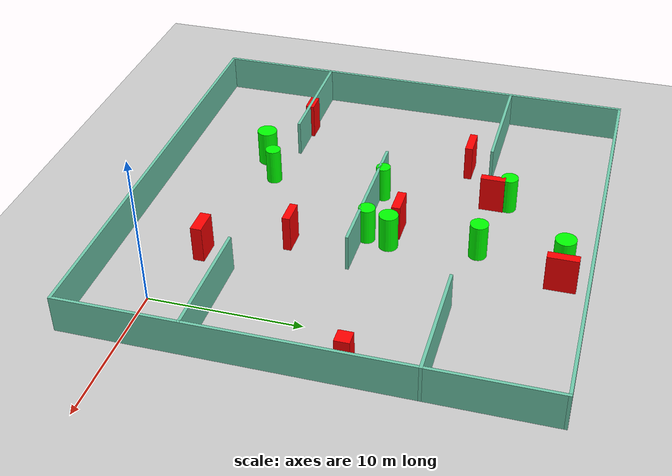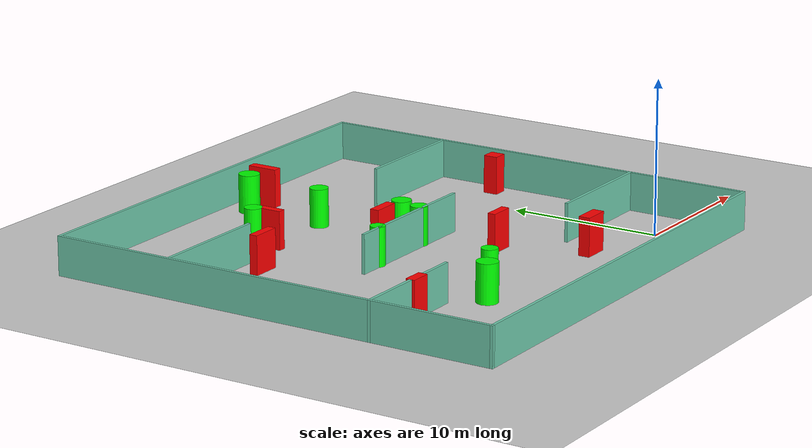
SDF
<sdf version="1.7">
 <world name="default">
  <light name="sun" type="directional">
   <pose>0 0 10 0 -0 0</pose>
   <diffuse>0.8 0.8 0.8 1</diffuse>
   <specular>0.2 0.2 0.2 1</specular>
   <attenuation>
    <range>1000</range>
    <constant>0.9</constant>
    <linear>0.01</linear>
    <quadratic>0.001</quadratic>
   </attenuation>
   <direction>-0.5 0.1 -0.9</direction>
   <spot><inner_angle>0</inner_angle><outer_angle>0</outer_angle><falloff>0</falloff></spot>
  </light>
  <model name="ground_plane">
   <static>1</static>
   <link name="link">
    <collision name="collision">
     <geometry><plane><normal>0 0 1</normal><size>100 100</size></plane></geometry>
     <surface>
      <contact><collide_bitmask>65535</collide_bitmask></contact>
      <friction><ode><mu>100</mu><mu2>50</mu2></ode></friction>
     </surface>
    </collision>
    <visual name="visual">
     <cast_shadows>0</cast_shadows>
     <geometry><plane><normal>0 0 1</normal><size>100 100</size></plane></geometry>
     <material>
      <script><uri>file://media/materials/scripts/gazebo.material</uri><name>Gazebo/Grey</name></script>
     </material>
    </visual>
   </link>
  </model>
  <gravity>0 0 -9.8</gravity>
  <magnetic_field>6e-06 2.3e-05 -4.2e-05</magnetic_field>
  <atmosphere type="adiabatic"/>
  <physics type="ode">
   <max_step_size>0.001</max_step_size>
   <real_time_factor>1</real_time_factor>
   <real_time_update_rate>1000</real_time_update_rate>
  </physics>
  <scene><ambient>0.4 0.4 0.4 1</ambient><background>0.7 0.7 0.7 1</background><shadows>1</shadows></scene>
  <spherical_coordinates>
   <surface_model>EARTH_WGS84</surface_model>
   <latitude_deg>0</latitude_deg>
   <longitude_deg>0</longitude_deg>
   <elevation>0</elevation>
   <heading_deg>0</heading_deg>
  </spherical_coordinates>
  <model name="my_base_walls">
   <link name="Wall_10">
    <collision name="Wall_10_Collision">
     <geometry><box><size>8.2 0.2 2.5</size></box></geometry>
     <pose>0 0 1.25 0 -0 0</pose>
    </collision>
    <visual name="Wall_10_Visual">
     <pose>0 0 1.25 0 -0 0</pose>
     <geometry><box><size>8.2 0.2 2.5</size></box></geometry>
     <material>
      <script><uri>file://media/materials/scripts/gazebo.material</uri><name>Gazebo/Grey</name></script>
      <ambient>0.435294 0.796078 0.67451 1</ambient>
     </material>
     <meta><layer>0</layer></meta>
    </visual>
    <pose>-11 -7 0 0 -0 0</pose>
   </link>
   <link name="Wall_12">
    <collision name="Wall_12_Collision">
     <geometry><box><size>8.2 0.2 2.5</size></box></geometry>
     <pose>0 0 1.25 0 -0 0</pose>
    </collision>
    <visual name="Wall_12_Visual">
     <pose>0 0 1.25 0 -0 0</pose>
     <geometry><box><size>8.2 0.2 2.5</size></box></geometry>
     <material>
      <script><uri>file://media/materials/scripts/gazebo.material</uri><name>Gazebo/Grey</name></script>
      <ambient>0.435294 0.796078 0.67451 1</ambient>
     </material>
     <meta><layer>0</layer></meta>
    </visual>
    <pose>-11 7 0 0 -0 0</pose>
   </link>
   <link name="Wall_14">
    <collision name="Wall_14_Collision">
     <geometry><box><size>8.2 0.2 2.5</size></box></geometry>
     <pose>0 0 1.25 0 -0 0</pose>
    </collision>
    <visual name="Wall_14_Visual">
     <pose>0 0 1.25 0 -0 0</pose>
     <geometry><box><size>8.2 0.2 2.5</size></box></geometry>
     <material>
      <script><uri>file://media/materials/scripts/gazebo.material</uri><name>Gazebo/Grey</name></script>
      <ambient>0.435294 0.796078 0.67451 1</ambient>
     </material>
     <meta><layer>0</layer></meta>
    </visual>
    <pose>11 7 0 0 -0 3.14159</pose>
   </link>
   <link name="Wall_16">
    <collision name="Wall_16_Collision">
     <geometry><box><size>10.2 0.2 2.5</size></box></geometry>
     <pose>0 0 1.25 0 -0 0</pose>
    </collision>
    <visual name="Wall_16_Visual">
     <pose>0 0 1.25 0 -0 0</pose>
     <geometry><box><size>10.2 0.2 2.5</size></box></geometry>
     <material>
      <script><uri>file://media/materials/scripts/gazebo.material</uri><name>Gazebo/Grey</name></script>
      <ambient>0.435294 0.796078 0.67451 1</ambient>
     </material>
     <meta><layer>0</layer></meta>
    </visual>
    <pose>0 0 0 0 -0 3.14159</pose>
   </link>
   <link name="Wall_2">
    <collision name="Wall_2_Collision">
     <geometry><box><size>30.2 0.2 2.5</size></box></geometry>
     <pose>0 0 1.25 0 -0 0</pose>
    </collision>
    <visual name="Wall_2_Visual">
     <pose>0 0 1.25 0 -0 0</pose>
     <geometry><box><size>30.2 0.2 2.5</size></box></geometry>
     <material>
      <script><uri>file://media/materials/scripts/gazebo.material</uri><name>Gazebo/Grey</name></script>
      <ambient>0.435294 0.796078 0.67451 1</ambient>
     </material>
     <meta><layer>0</layer></meta>
    </visual>
    <pose>0 -15 0 0 -0 3.14159</pose>
   </link>
   <link name="Wall_3">
    <collision name="Wall_3_Collision">
     <geometry><box><size>30.2 0.2 2.5</size></box></geometry>
     <pose>0 0 1.25 0 -0 0</pose>
    </collision>
    <visual name="Wall_3_Visual">
     <pose>0 0 1.25 0 -0 0</pose>
     <geometry><box><size>30.2 0.2 2.5</size></box></geometry>
     <material>
      <script><uri>file://media/materials/scripts/gazebo.material</uri><name>Gazebo/Grey</name></script>
      <ambient>0.435294 0.796078 0.67451 1</ambient>
     </material>
     <meta><layer>0</layer></meta>
    </visual>
    <pose>-15 0 0 0 -0 1.5708</pose>
   </link>
   <link name="Wall_4">
    <collision name="Wall_4_Collision">
     <geometry><box><size>30.2 0.2 2.5</size></box></geometry>
     <pose>0 0 1.25 0 -0 0</pose>
    </collision>
    <visual name="Wall_4_Visual">
     <pose>0 0 1.25 0 -0 0</pose>
     <geometry><box><size>30.2 0.2 2.5</size></box></geometry>
     <material>
      <script><uri>file://media/materials/scripts/gazebo.material</uri><name>Gazebo/Grey</name></script>
      <ambient>0.435294 0.796078 0.67451 1</ambient>
     </material>
     <meta><layer>0</layer></meta>
    </visual>
    <pose>0 15 0 0 -0 0</pose>
   </link>
   <link name="Wall_6">
    <collision name="Wall_6_Collision">
     <geometry><box><size>30.2 0.2 2.5</size></box></geometry>
     <pose>0 0 1.25 0 -0 0</pose>
    </collision>
    <visual name="Wall_6_Visual">
     <pose>0 0 1.25 0 -0 0</pose>
     <geometry><box><size>30.2 0.2 2.5</size></box></geometry>
     <material>
      <script><uri>file://media/materials/scripts/gazebo.material</uri><name>Gazebo/Grey</name></script>
      <ambient>0.435294 0.796078 0.67451 1</ambient>
     </material>
     <meta><layer>0</layer></meta>
    </visual>
    <pose>15 0 0 0 -0 1.5708</pose>
   </link>
   <link name="Wall_8">
    <collision name="Wall_8_Collision">
     <geometry><box><size>8.2 0.2 2.5</size></box></geometry>
     <pose>0 0 1.25 0 -0 0</pose>
    </collision>
    <visual name="Wall_8_Visual">
     <pose>0 0 1.25 0 -0 0</pose>
     <geometry><box><size>8.2 0.2 2.5</size></box></geometry>
     <material>
      <script><uri>file://media/materials/scripts/gazebo.material</uri><name>Gazebo/Grey</name></script>
      <ambient>0.435294 0.796078 0.67451 1</ambient>
     </material>
     <meta><layer>0</layer></meta>
    </visual>
    <pose>11 -7 0 0 -0 3.14159</pose>
   </link>
   <static>1</static>
   <pose>-11 11 0 0 -0 0</pose>
  </model>
  <model name="cylinder1">
   <static>1</static>
   <link name="link">
    <inertial>
     <mass>1</mass>
     <inertia><ixx>0.5</ixx><ixy>0</ixy><ixz>0</ixz><iyy>0.5</iyy><iyz>0</iyz><izz>1</izz></inertia>
    </inertial>
    <collision name="collision">
     <geometry><cylinder><radius>0.6856029430779575</radius><length>2.5</length></cylinder></geometry>
    </collision>
    <visual name="visual">
     <geometry><cylinder><radius>0.6856029430779575</radius><length>2.5</length></cylinder></geometry>
     <material>
      <ambient>0 1 0 1</ambient>
      <diffuse>0 1 0 1</diffuse>
      <specular>0.1 0.1 0.1 1</specular>
      <emissive>0 0 0 0</emissive>
     </material>
    </visual>
   </link>
   <pose>-16.481783653139367 2.1095712657854744 1.25 0 0 0</pose>
  </model>
  <model name="cylinder2">
   <static>1</static>
   <link name="link">
    <inertial>
     <mass>1</mass>
     <inertia><ixx>0.5</ixx><ixy>0</ixy><ixz>0</ixz><iyy>0.5</iyy><iyz>0</iyz><izz>1</izz></inertia>
    </inertial>
    <collision name="collision">
     <geometry><cylinder><radius>0.5541081768311928</radius><length>2.5</length></cylinder></geometry>
    </collision>
    <visual name="visual">
     <geometry><cylinder><radius>0.5541081768311928</radius><length>2.5</length></cylinder></geometry>
     <material>
      <ambient>0 1 0 1</ambient>
      <diffuse>0 1 0 1</diffuse>
      <specular>0.1 0.1 0.1 1</specular>
      <emissive>0 0 0 0</emissive>
     </material>
    </visual>
   </link>
   <pose>-9.308797314926014 11.38275360388665 1.25 0 0 0</pose>
  </model>
  <model name="cylinder3">
   <static>1</static>
   <link name="link">
    <inertial>
     <mass>1</mass>
     <inertia><ixx>0.5</ixx><ixy>0</ixy><ixz>0</ixz><iyy>0.5</iyy><iyz>0</iyz><izz>1</izz></inertia>
    </inertial>
    <collision name="collision">
     <geometry><cylinder><radius>0.6336333463547302</radius><length>2.5</length></cylinder></geometry>
    </collision>
    <visual name="visual">
     <geometry><cylinder><radius>0.6336333463547302</radius><length>2.5</length></cylinder></geometry>
     <material>
      <ambient>0 1 0 1</ambient>
      <diffuse>0 1 0 1</diffuse>
      <specular>0.1 0.1 0.1 1</specular>
      <emissive>0 0 0 0</emissive>
     </material>
    </visual>
   </link>
   <pose>-8.915063907206239 12.924709237545397 1.25 0 0 0</pose>
  </model>
  <model name="cylinder4">
   <static>1</static>
   <link name="link">
    <inertial>
     <mass>1</mass>
     <inertia><ixx>0.5</ixx><ixy>0</ixy><ixz>0</ixz><iyy>0.5</iyy><iyz>0</iyz><izz>1</izz></inertia>
    </inertial>
    <collision name="collision">
     <geometry><cylinder><radius>0.6843343526646563</radius><length>2.5</length></cylinder></geometry>
    </collision>
    <visual name="visual">
     <geometry><cylinder><radius>0.6843343526646563</radius><length>2.5</length></cylinder></geometry>
     <material>
      <ambient>0 1 0 1</ambient>
      <diffuse>0 1 0 1</diffuse>
      <specular>0.1 0.1 0.1 1</specular>
      <emissive>0 0 0 0</emissive>
     </material>
    </visual>
   </link>
   <pose>-9.295812400957558 24.153462288152785 1.25 0 0 0</pose>
  </model>
  <model name="cylinder5">
   <static>1</static>
   <link name="link">
    <inertial>
     <mass>1</mass>
     <inertia><ixx>0.5</ixx><ixy>0</ixy><ixz>0</ixz><iyy>0.5</iyy><iyz>0</iyz><izz>1</izz></inertia>
    </inertial>
    <collision name="collision">
     <geometry><cylinder><radius>0.5688231569951145</radius><length>2.5</length></cylinder></geometry>
    </collision>
    <visual name="visual">
     <geometry><cylinder><radius>0.5688231569951145</radius><length>2.5</length></cylinder></geometry>
     <material>
      <ambient>0 1 0 1</ambient>
      <diffuse>0 1 0 1</diffuse>
      <specular>0.1 0.1 0.1 1</specular>
      <emissive>0 0 0 0</emissive>
     </material>
    </visual>
   </link>
   <pose>-15.085712150942973 19.716447788885294 1.25 0 0 0</pose>
  </model>
  <model name="cylinder6">
   <static>1</static>
   <link name="link">
    <inertial>
     <mass>1</mass>
     <inertia><ixx>0.5</ixx><ixy>0</ixy><ixz>0</ixz><iyy>0.5</iyy><iyz>0</iyz><izz>1</izz></inertia>
    </inertial>
    <collision name="collision">
     <geometry><cylinder><radius>0.5980418269618055</radius><length>2.5</length></cylinder></geometry>
    </collision>
    <visual name="visual">
     <geometry><cylinder><radius>0.5980418269618055</radius><length>2.5</length></cylinder></geometry>
     <material>
      <ambient>0 1 0 1</ambient>
      <diffuse>0 1 0 1</diffuse>
      <specular>0.1 0.1 0.1 1</specular>
      <emissive>0 0 0 0</emissive>
     </material>
    </visual>
   </link>
   <pose>-9.472195441083974 18.686536753563093 1.25 0 0 0</pose>
  </model>
  <model name="cylinder7">
   <static>1</static>
   <link name="link">
    <inertial>
     <mass>1</mass>
     <inertia><ixx>0.5</ixx><ixy>0</ixy><ixz>0</ixz><iyy>0.5</iyy><iyz>0</iyz><izz>1</izz></inertia>
    </inertial>
    <collision name="collision">
     <geometry><cylinder><radius>0.5252026149179595</radius><length>2.5</length></cylinder></geometry>
    </collision>
    <visual name="visual">
     <geometry><cylinder><radius>0.5252026149179595</radius><length>2.5</length></cylinder></geometry>
     <material>
      <ambient>0 1 0 1</ambient>
      <diffuse>0 1 0 1</diffuse>
      <specular>0.1 0.1 0.1 1</specular>
      <emissive>0 0 0 0</emissive>
     </material>
    </visual>
   </link>
   <pose>-14.265610739649167 3.3066964334828883 1.25 0 0 0</pose>
  </model>
  <model name="cylinder8">
   <static>1</static>
   <link name="link">
    <inertial>
     <mass>1</mass>
     <inertia><ixx>0.5</ixx><ixy>0</ixy><ixz>0</ixz><iyy>0.5</iyy><iyz>0</iyz><izz>1</izz></inertia>
    </inertial>
    <collision name="collision">
     <geometry><cylinder><radius>0.4858164296600476</radius><length>2.5</length></cylinder></geometry>
    </collision>
    <visual name="visual">
     <geometry><cylinder><radius>0.4858164296600476</radius><length>2.5</length></cylinder></geometry>
     <material>
      <ambient>0 1 0 1</ambient>
      <diffuse>0 1 0 1</diffuse>
      <specular>0.1 0.1 0.1 1</specular>
      <emissive>0 0 0 0</emissive>
     </material>
    </visual>
   </link>
   <pose>-14.14233197936442 11.240286440402816 1.25 0 0 0</pose>
  </model>
  <model name="box1">
   <static>1</static>
   <link name="link">
    <inertial>
     <mass>1</mass>
     <inertia><ixx>0.083</ixx><ixy>0</ixy><ixz>0</ixz><iyy>0.083</iyy><iyz>0</iyz><izz>0.083</izz></inertia>
    </inertial>
    <collision name="collision">
     <geometry><box><size>1.3541398988276847 0.6042786590901906 2.5</size></box></geometry>
    </collision>
    <visual name="visual">
     <geometry><box><size>1.3541398988276847 0.6042786590901906 2.5</size></box></geometry>
     <material>
      <ambient>1 0 0 1</ambient>
      <diffuse>1 0 0 1</diffuse>
      <specular>0.1 0.1 0.1 1</specular>
      <emissive>0 0 0 0</emissive>
     </material>
    </visual>
    <sensor name="my_contact" type="contact">
     <contact><collision>box_collision</collision><topic>__default_topic__</topic></contact>
    </sensor>
   </link>
   <pose>-21.097053297138494 4.0264581858839374 1.25 0 0 0</pose>
  </model>
  <model name="box2">
   <static>1</static>
   <link name="link">
    <inertial>
     <mass>1</mass>
     <inertia><ixx>0.083</ixx><ixy>0</ixy><ixz>0</ixz><iyy>0.083</iyy><iyz>0</iyz><izz>0.083</izz></inertia>
    </inertial>
    <collision name="collision">
     <geometry><box><size>0.5954036918294212 2.0110030640007848 2.5</size></box></geometry>
    </collision>
    <visual name="visual">
     <geometry><box><size>0.5954036918294212 2.0110030640007848 2.5</size></box></geometry>
     <material>
      <ambient>1 0 0 1</ambient>
      <diffuse>1 0 0 1</diffuse>
      <specular>0.1 0.1 0.1 1</specular>
      <emissive>0 0 0 0</emissive>
     </material>
    </visual>
    <sensor name="my_contact" type="contact">
     <contact><collision>box_collision</collision><topic>__default_topic__</topic></contact>
    </sensor>
   </link>
   <pose>-7.512022044104189 24.220605178786474 1.25 0 0 0</pose>
  </model>
  <model name="box3">
   <static>1</static>
   <link name="link">
    <inertial>
     <mass>1</mass>
     <inertia><ixx>0.083</ixx><ixy>0</ixy><ixz>0</ixz><iyy>0.083</iyy><iyz>0</iyz><izz>0.083</izz></inertia>
    </inertial>
    <collision name="collision">
     <geometry><box><size>1.9207330007389334 0.5251516543397114 2.5</size></box></geometry>
    </collision>
    <visual name="visual">
     <geometry><box><size>1.9207330007389334 0.5251516543397114 2.5</size></box></geometry>
     <material>
      <ambient>1 0 0 1</ambient>
      <diffuse>1 0 0 1</diffuse>
      <specular>0.1 0.1 0.1 1</specular>
      <emissive>0 0 0 0</emissive>
     </material>
    </visual>
    <sensor name="my_contact" type="contact">
     <contact><collision>box_collision</collision><topic>__default_topic__</topic></contact>
    </sensor>
   </link>
   <pose>-18.803644430575275 16.39409544576834 1.25 0 0 0</pose>
  </model>
  <model name="box4">
   <static>1</static>
   <link name="link">
    <inertial>
     <mass>1</mass>
     <inertia><ixx>0.083</ixx><ixy>0</ixy><ixz>0</ixz><iyy>0.083</iyy><iyz>0</iyz><izz>0.083</izz></inertia>
    </inertial>
    <collision name="collision">
     <geometry><box><size>1.7412959428180743 0.7322448801803367 2.5</size></box></geometry>
    </collision>
    <visual name="visual">
     <geometry><box><size>1.7412959428180743 0.7322448801803367 2.5</size></box></geometry>
     <material>
      <ambient>1 0 0 1</ambient>
      <diffuse>1 0 0 1</diffuse>
      <specular>0.1 0.1 0.1 1</specular>
      <emissive>0 0 0 0</emissive>
     </material>
    </visual>
    <sensor name="my_contact" type="contact">
     <contact><collision>box_collision</collision><topic>__default_topic__</topic></contact>
    </sensor>
   </link>
   <pose>-5.150340090216574 1.633170123364554 1.25 0 0 0</pose>
  </model>
  <model name="box5">
   <static>1</static>
   <link name="link">
    <inertial>
     <mass>1</mass>
     <inertia><ixx>0.083</ixx><ixy>0</ixy><ixz>0</ixz><iyy>0.083</iyy><iyz>0</iyz><izz>0.083</izz></inertia>
    </inertial>
    <collision name="collision">
     <geometry><box><size>1.6570149022789968 0.5170024815027455 2.5</size></box></geometry>
    </collision>
    <visual name="visual">
     <geometry><box><size>1.6570149022789968 0.5170024815027455 2.5</size></box></geometry>
     <material>
      <ambient>1 0 0 1</ambient>
      <diffuse>1 0 0 1</diffuse>
      <specular>0.1 0.1 0.1 1</specular>
      <emissive>0 0 0 0</emissive>
     </material>
    </visual>
    <sensor name="my_contact" type="contact">
     <contact><collision>box_collision</collision><topic>__default_topic__</topic></contact>
    </sensor>
   </link>
   <pose>-7.614808794393735 6.732844514007592 1.25 0 0 0</pose>
  </model>
  <model name="box6">
   <static>1</static>
   <link name="link">
    <inertial>
     <mass>1</mass>
     <inertia><ixx>0.083</ixx><ixy>0</ixy><ixz>0</ixz><iyy>0.083</iyy><iyz>0</iyz><izz>0.083</izz></inertia>
    </inertial>
    <collision name="collision">
     <geometry><box><size>0.9546240889440993 0.9426321709983004 2.5</size></box></geometry>
    </collision>
    <visual name="visual">
     <geometry><box><size>0.9546240889440993 0.9426321709983004 2.5</size></box></geometry>
     <material>
      <ambient>1 0 0 1</ambient>
      <diffuse>1 0 0 1</diffuse>
      <specular>0.1 0.1 0.1 1</specular>
      <emissive>0 0 0 0</emissive>
     </material>
    </visual>
    <sensor name="my_contact" type="contact">
     <contact><collision>box_collision</collision><topic>__default_topic__</topic></contact>
    </sensor>
   </link>
   <pose>2.7695978791004094 13.337434444355718 1.25 0 0 0</pose>
  </model>
  <model name="box7">
   <static>1</static>
   <link name="link">
    <inertial>
     <mass>1</mass>
     <inertia><ixx>0.083</ixx><ixy>0</ixy><ixz>0</ixz><iyy>0.083</iyy><iyz>0</iyz><izz>0.083</izz></inertia>
    </inertial>
    <collision name="collision">
     <geometry><box><size>1.82467709988673 0.5815515656432106 2.5</size></box></geometry>
    </collision>
    <visual name="visual">
     <geometry><box><size>1.82467709988673 0.5815515656432106 2.5</size></box></geometry>
     <material>
      <ambient>1 0 0 1</ambient>
      <diffuse>1 0 0 1</diffuse>
      <specular>0.1 0.1 0.1 1</specular>
      <emissive>0 0 0 0</emissive>
     </material>
    </visual>
    <sensor name="my_contact" type="contact">
     <contact><collision>box_collision</collision><topic>__default_topic__</topic></contact>
    </sensor>
   </link>
   <pose>-10.651616758532391 13.175947553715076 1.25 0 0 0</pose>
  </model>
  <model name="box8">
   <static>1</static>
   <link name="link">
    <inertial>
     <mass>1</mass>
     <inertia><ixx>0.083</ixx><ixy>0</ixy><ixz>0</ixz><iyy>0.083</iyy><iyz>0</iyz><izz>0.083</izz></inertia>
    </inertial>
    <collision name="collision">
     <geometry><box><size>0.5094446265053817 1.6401650040516553 2.5</size></box></geometry>
    </collision>
    <visual name="visual">
     <geometry><box><size>0.5094446265053817 1.6401650040516553 2.5</size></box></geometry>
     <material>
      <ambient>1 0 0 1</ambient>
      <diffuse>1 0 0 1</diffuse>
      <specular>0.1 0.1 0.1 1</specular>
      <emissive>0 0 0 0</emissive>
     </material>
    </visual>
    <sensor name="my_contact" type="contact">
     <contact><collision>box_collision</collision><topic>__default_topic__</topic></contact>
    </sensor>
   </link>
   <pose>-14.74730039971803 18.653404714527912 1.25 0 0 0</pose>
  </model>
 </world>
</sdf>
